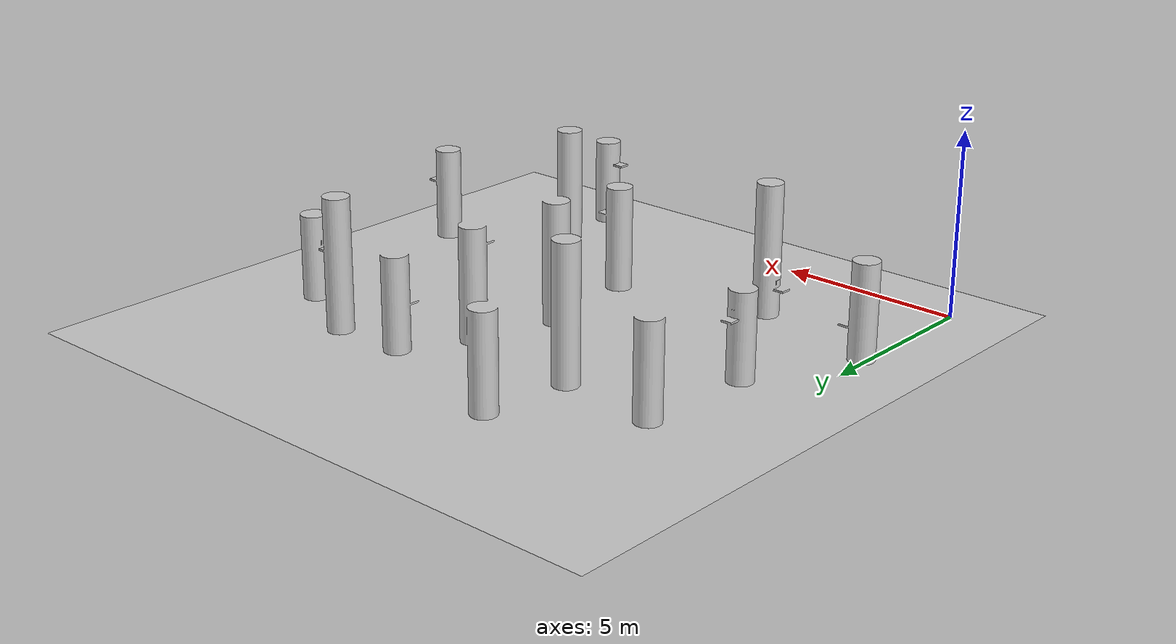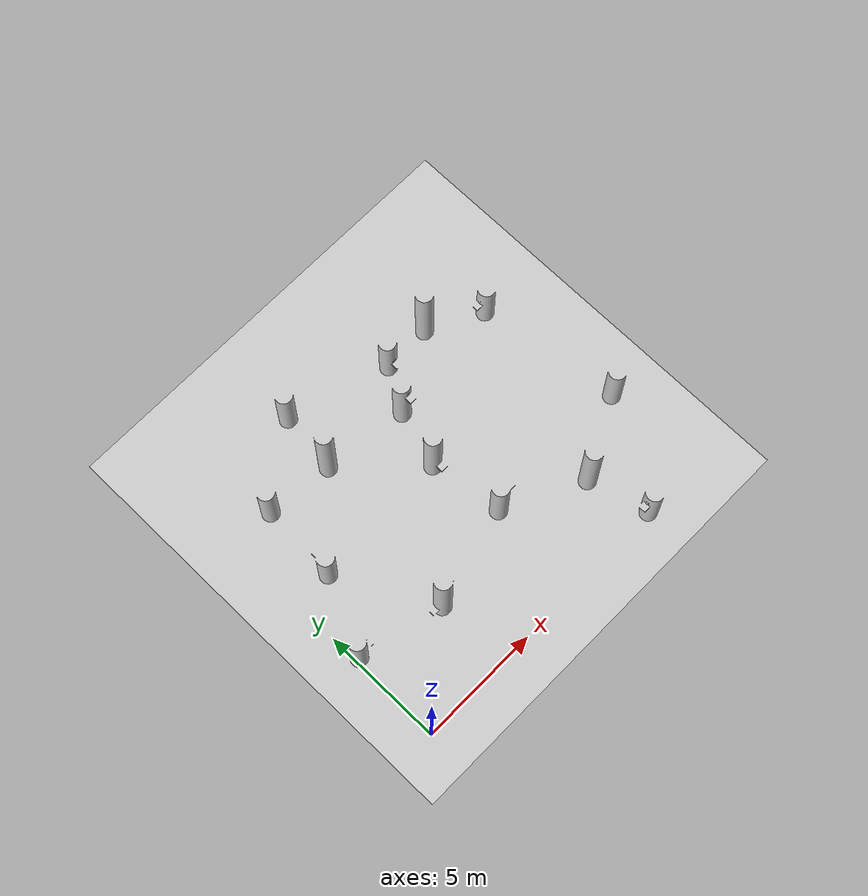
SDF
<?xml version="1.0" ?>
<sdf version="1.9">
  <model name="icuas26_3">
    <static>true</static>
    <link name="link">
      <collision name="collision">
        <geometry>
          <mesh>
            <uri>model://icuas26_3/meshes/icuas26_3.stl</uri>
          </mesh>
        </geometry>
      </collision>
      <visual name="visual">
        <geometry>
          <mesh>
            <uri>model://icuas26_3/meshes/icuas26_3.stl</uri>
          </mesh>
        </geometry>
        <material>
            <ambient>0.8 0.8 0.8 1</ambient>
            <diffuse>0.8 0.8 0.8 1</diffuse>
            <specular>0.8 0.8 0.8 1</specular>
        </material>
      </visual>
    </link>
  </model>
</sdf>
